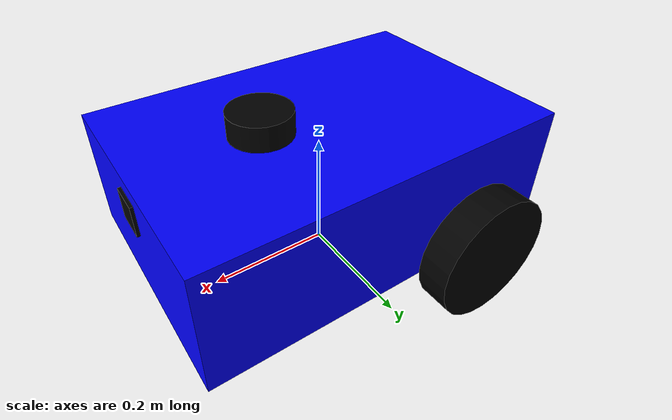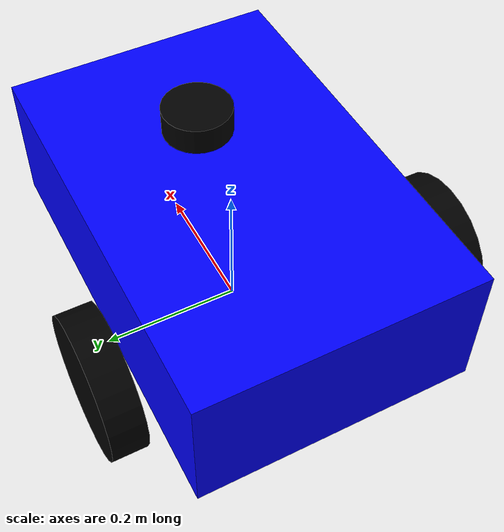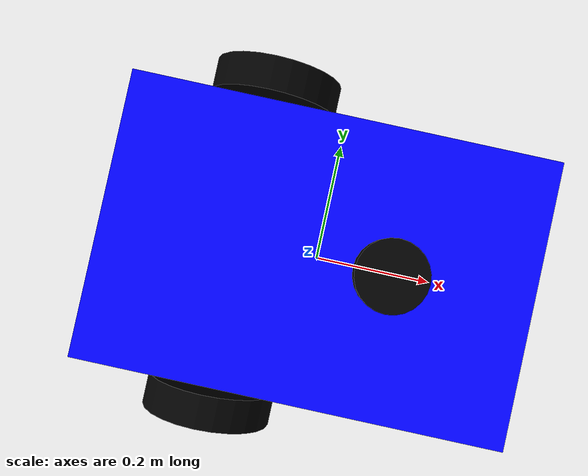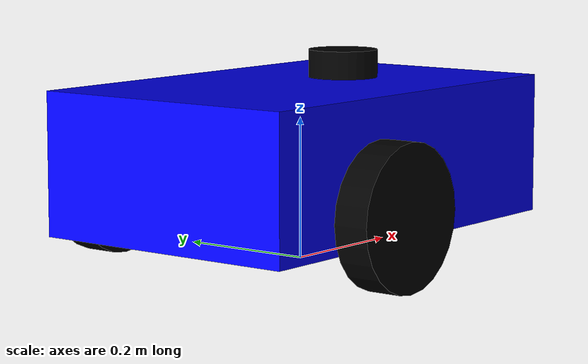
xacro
<?xml version="1.0"?>
<robot xmlns:xacro="http://www.ros.org/wiki/xacro" name="robot">

    <xacro:include filename="robot.gazebo" />

    <xacro:property name="base_length" value="0.6"/>
    <xacro:property name="base_width" value="0.4"/>
    <xacro:property name="base_height" value="0.2"/>
    <xacro:property name="wheel_radius" value="0.1"/>
    <xacro:property name="wheel_width" value="0.05"/>
    <xacro:property name="wheel_ygap" value="0.05"/>
    <xacro:property name="wheel_zoff" value="0.05"/>
    <xacro:property name="wheel_xoff" value="0.12"/>

    <material name="blue"><color rgba="0 0 1 1"/></material>
    <material name="black"><color rgba="0 0 0 1"/></material>

    <xacro:macro name="box_inertia" params="m w h d">
        <inertial>
            <origin xyz="0 0 0" rpy="${pi/2} 0 ${pi/2}"/>
            <mass value="${m}"/>
            <inertia ixx="${(m/12) * (h*h + d*d)}" ixy="0.0" ixz="0.0" iyy="${(m/12) * (w*w + d*d)}" iyz="0.0" izz="${(m/12) * (w*w + h*h)}"/>
        </inertial>
    </xacro:macro>

    <xacro:macro name="cylinder_inertia" params="m r h">
        <inertial>
            <origin xyz="0 0 0" rpy="${pi/2} 0 0" />
            <mass value="${m}"/>
            <inertia ixx="${(m/12) * (3*r*r + h*h)}" ixy="0" ixz="0" iyy="${(m/12) * (3*r*r + h*h)}" iyz="0" izz="${(m/2) * (r*r)}"/>
        </inertial>
    </xacro:macro>

    <link name="base_footprint"/>

    <joint name="base_joint" type="fixed">
        <parent link="base_footprint"/>
        <child link="base_link"/>
        <origin xyz="0 0 ${wheel_radius + wheel_zoff}" rpy="0 0 0"/>
    </joint>

    <link name="base_link">
        <visual>
            <geometry><box size="${base_length} ${base_width} ${base_height}"/></geometry>
            <material name="blue"/>
        </visual>
        <collision>
            <geometry><box size="${base_length} ${base_width} ${base_height}"/></geometry>
        </collision>
        <xacro:box_inertia m="15" w="${base_width}" h="${base_height}" d="${base_length}"/>
    </link>

    <xacro:macro name="wheel" params="prefix x_reflect y_reflect">
        <link name="${prefix}_link">
            <visual>
                <origin xyz="0 0 0" rpy="${pi/2} 0 0"/>
                <geometry><cylinder radius="${wheel_radius}" length="${wheel_width}"/></geometry>
                <material name="black"/>
            </visual>
            <collision>
                <origin xyz="0 0 0" rpy="${pi/2} 0 0"/>
                <geometry><cylinder radius="${wheel_radius}" length="${wheel_width}"/></geometry>
            </collision>
            <xacro:cylinder_inertia m="0.5" r="${wheel_radius}" h="${wheel_width}"/>
        </link>

        <joint name="${prefix}_joint" type="continuous">
            <parent link="base_link"/>
            <child link="${prefix}_link"/>
            <origin xyz="${x_reflect*wheel_xoff} ${y_reflect*(base_width/2+wheel_ygap)} ${-wheel_zoff}" rpy="0 0 0"/>
            <axis xyz="0 1 0"/>
        </joint>
    </xacro:macro>

    <xacro:wheel prefix="drivewhl_l" x_reflect="-1" y_reflect="1"/>
    <xacro:wheel prefix="drivewhl_r" x_reflect="-1" y_reflect="-1"/>

    <link name="caster_wheel">
        <visual>
            <geometry><sphere radius="0.05"/></geometry>
            <material name="black"/>
        </visual>
        <collision>
            <geometry><sphere radius="0.05"/></geometry>
        </collision>
        <xacro:cylinder_inertia m="0.1" r="0.05" h="0.05"/>
    </link>

    <joint name="caster_wheel_joint" type="fixed">
        <parent link="base_link"/>
        <child link="caster_wheel"/>
        <origin xyz="0.2 0 -0.05" rpy="0 0 0"/>
    </joint>

    <!-- LIDAR -->
    <link name="laser_frame">
        <visual>
            <geometry><cylinder radius="0.05" length="0.04"/></geometry>
            <material name="black"/>
        </visual>
        <collision>
            <geometry><cylinder radius="0.05" length="0.04"/></geometry>
        </collision>
        <xacro:cylinder_inertia m="0.1" r="0.05" h="0.04"/>
    </link>

    <joint name="laser_joint" type="fixed">
        <parent link="base_link"/>
        <child link="laser_frame"/>
        <origin xyz="0.1 0 0.12" rpy="0 0 0"/>
    </joint>

    <!-- CAMERA -->
    <link name="camera_link">
        <visual>
            <geometry><box size="0.05 0.05 0.05"/></geometry>
            <material name="black"/>
        </visual>
        <collision>
            <geometry><box size="0.05 0.05 0.05"/></geometry>
        </collision>
        <xacro:box_inertia m="0.1" w="0.05" h="0.05" d="0.05"/>
    </link>

    <joint name="camera_joint" type="fixed">
        <parent link="base_link"/>
        <child link="camera_link"/>
        <origin xyz="0.28 0 0.05" rpy="0 0 0"/>
    </joint>

</robot>
